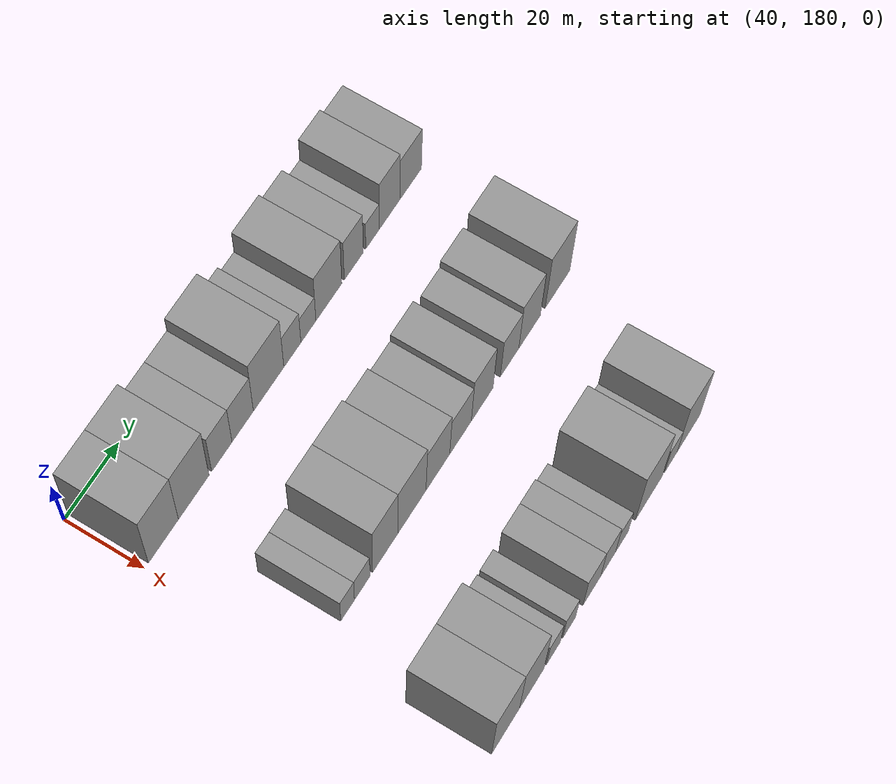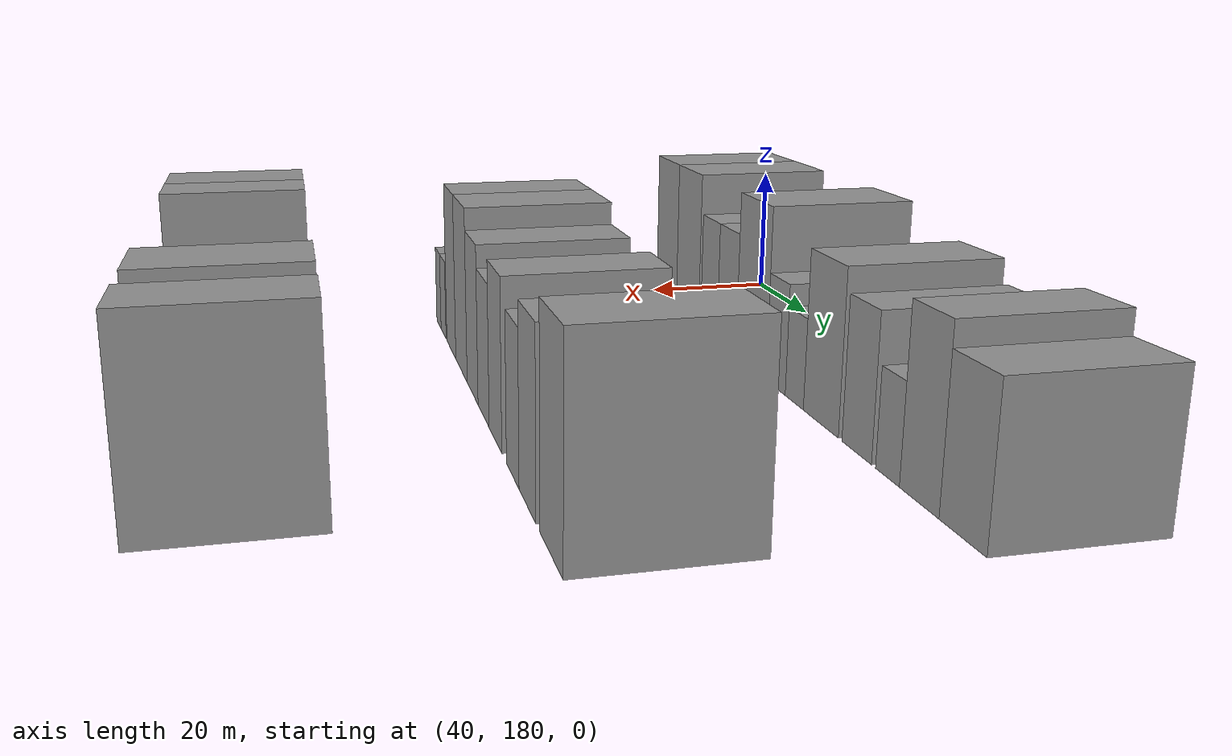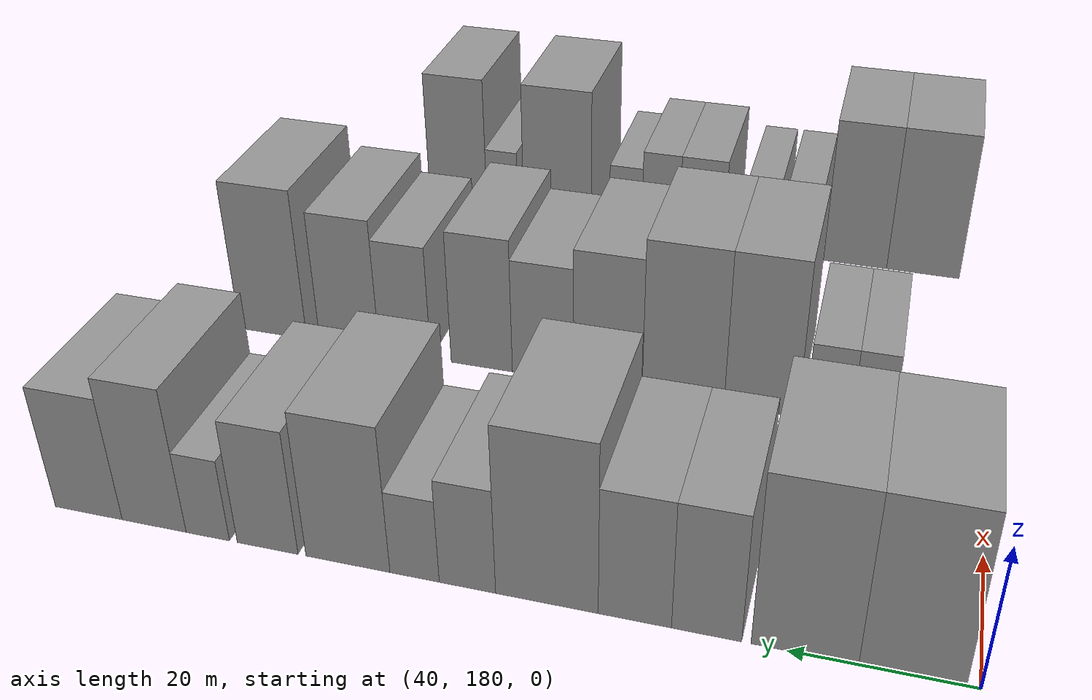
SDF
<sdf version="1.6">
 <world name="default">
  <model name="building_67">
   <static>1</static>
   <pose>50.0000 186.9651 0 0.000000 0.000000 0.000000</pose>
   <link name="link">
    <pose>0 0 12.00 0 0 0</pose>
    <collision name="collision"><geometry><box><size>20.0000 11.0808 24.0000</size></box></geometry></collision>
    <visual name="visual">
     <cast_shadows>0</cast_shadows>
     <geometry><box><size>20.0000 11.0808 24.0000</size></box></geometry>
     <material>
      <script>
       <uri>model://grey_wall/materials/scripts</uri>
       <uri>model://grey_wall/materials/textures</uri>
       <name>vrc/grey_wall</name>
      </script>
     </material>
    </visual>
   </link>
  </model>
  <model name="building_68">
   <static>1</static>
   <pose>50.0000 198.2127 0 0.000000 0.000000 0.000000</pose>
   <link name="link">
    <pose>0 0 12.00 0 0 0</pose>
    <collision name="collision"><geometry><box><size>20.0000 11.4144 24.0000</size></box></geometry></collision>
    <visual name="visual">
     <cast_shadows>0</cast_shadows>
     <geometry><box><size>20.0000 11.4144 24.0000</size></box></geometry>
     <material>
      <script>
       <uri>model://grey_wall/materials/scripts</uri>
       <uri>model://grey_wall/materials/textures</uri>
       <name>vrc/grey_wall</name>
      </script>
     </material>
    </visual>
   </link>
  </model>
  <model name="building_69">
   <static>1</static>
   <pose>50.0000 208.7567 0 0.000000 0.000000 0.000000</pose>
   <link name="link">
    <pose>0 0 9.00 0 0 0</pose>
    <collision name="collision"><geometry><box><size>20.0000 7.6735 18.0000</size></box></geometry></collision>
    <visual name="visual">
     <cast_shadows>0</cast_shadows>
     <geometry><box><size>20.0000 7.6735 18.0000</size></box></geometry>
     <material>
      <script>
       <uri>model://grey_wall/materials/scripts</uri>
       <uri>model://grey_wall/materials/textures</uri>
       <name>vrc/grey_wall</name>
      </script>
     </material>
    </visual>
   </link>
  </model>
  <model name="building_70">
   <static>1</static>
   <pose>50.0000 216.6942 0 0.000000 0.000000 0.000000</pose>
   <link name="link">
    <pose>0 0 9.00 0 0 0</pose>
    <collision name="collision"><geometry><box><size>20.0000 8.2016 18.0000</size></box></geometry></collision>
    <visual name="visual">
     <cast_shadows>0</cast_shadows>
     <geometry><box><size>20.0000 8.2016 18.0000</size></box></geometry>
     <material>
      <script>
       <uri>model://grey_wall/materials/scripts</uri>
       <uri>model://grey_wall/materials/textures</uri>
       <name>vrc/grey_wall</name>
      </script>
     </material>
    </visual>
   </link>
  </model>
  <model name="building_71">
   <static>1</static>
   <pose>50.0000 226.6920 0 0.000000 0.000000 0.000000</pose>
   <link name="link">
    <pose>0 0 12.00 0 0 0</pose>
    <collision name="collision"><geometry><box><size>20.0000 11.7941 24.0000</size></box></geometry></collision>
    <visual name="visual">
     <cast_shadows>0</cast_shadows>
     <geometry><box><size>20.0000 11.7941 24.0000</size></box></geometry>
     <material>
      <script>
       <uri>model://grey_wall/materials/scripts</uri>
       <uri>model://grey_wall/materials/textures</uri>
       <name>vrc/grey_wall</name>
      </script>
     </material>
    </visual>
   </link>
  </model>
  <model name="building_72">
   <static>1</static>
   <pose>50.0000 235.9227 0 0.000000 0.000000 0.000000</pose>
   <link name="link">
    <pose>0 0 7.50 0 0 0</pose>
    <collision name="collision"><geometry><box><size>20.0000 6.6673 15.0000</size></box></geometry></collision>
    <visual name="visual">
     <cast_shadows>0</cast_shadows>
     <geometry><box><size>20.0000 6.6673 15.0000</size></box></geometry>
     <material>
      <script>
       <uri>model://grey_wall/materials/scripts</uri>
       <uri>model://grey_wall/materials/textures</uri>
       <name>vrc/grey_wall</name>
      </script>
     </material>
    </visual>
   </link>
  </model>
  <model name="building_73">
   <static>1</static>
   <pose>50.0000 242.2186 0 0.000000 0.000000 0.000000</pose>
   <link name="link">
    <pose>0 0 6.00 0 0 0</pose>
    <collision name="collision"><geometry><box><size>20.0000 5.9244 12.0000</size></box></geometry></collision>
    <visual name="visual">
     <cast_shadows>0</cast_shadows>
     <geometry><box><size>20.0000 5.9244 12.0000</size></box></geometry>
     <material>
      <script>
       <uri>model://grey_wall/materials/scripts</uri>
       <uri>model://grey_wall/materials/textures</uri>
       <name>vrc/grey_wall</name>
      </script>
     </material>
    </visual>
   </link>
  </model>
  <model name="building_74">
   <static>1</static>
   <pose>50.0000 250.3440 0 0.000000 0.000000 0.000000</pose>
   <link name="link">
    <pose>0 0 10.50 0 0 0</pose>
    <collision name="collision"><geometry><box><size>20.0000 10.3265 21.0000</size></box></geometry></collision>
    <visual name="visual">
     <cast_shadows>0</cast_shadows>
     <geometry><box><size>20.0000 10.3265 21.0000</size></box></geometry>
     <material>
      <script>
       <uri>model://grey_wall/materials/scripts</uri>
       <uri>model://grey_wall/materials/textures</uri>
       <name>vrc/grey_wall</name>
      </script>
     </material>
    </visual>
   </link>
  </model>
  <model name="building_75">
   <static>1</static>
   <pose>50.0000 260.3476 0 0.000000 0.000000 0.000000</pose>
   <link name="link">
    <pose>0 0 9.00 0 0 0</pose>
    <collision name="collision"><geometry><box><size>20.0000 7.6806 18.0000</size></box></geometry></collision>
    <visual name="visual">
     <cast_shadows>0</cast_shadows>
     <geometry><box><size>20.0000 7.6806 18.0000</size></box></geometry>
     <material>
      <script>
       <uri>model://grey_wall/materials/scripts</uri>
       <uri>model://grey_wall/materials/textures</uri>
       <name>vrc/grey_wall</name>
      </script>
     </material>
    </visual>
   </link>
  </model>
  <model name="building_76">
   <static>1</static>
   <pose>50.0000 267.9859 0 0.000000 0.000000 0.000000</pose>
   <link name="link">
    <pose>0 0 6.00 0 0 0</pose>
    <collision name="collision"><geometry><box><size>20.0000 5.5958 12.0000</size></box></geometry></collision>
    <visual name="visual">
     <cast_shadows>0</cast_shadows>
     <geometry><box><size>20.0000 5.5958 12.0000</size></box></geometry>
     <material>
      <script>
       <uri>model://grey_wall/materials/scripts</uri>
       <uri>model://grey_wall/materials/textures</uri>
       <name>vrc/grey_wall</name>
      </script>
     </material>
    </visual>
   </link>
  </model>
  <model name="building_77">
   <static>1</static>
   <pose>50.0000 274.9859 0 0.000000 0.000000 0.000000</pose>
   <link name="link">
    <pose>0 0 10.50 0 0 0</pose>
    <collision name="collision"><geometry><box><size>20.0000 8.4042 21.0000</size></box></geometry></collision>
    <visual name="visual">
     <cast_shadows>0</cast_shadows>
     <geometry><box><size>20.0000 8.4042 21.0000</size></box></geometry>
     <material>
      <script>
       <uri>model://grey_wall/materials/scripts</uri>
       <uri>model://grey_wall/materials/textures</uri>
       <name>vrc/grey_wall</name>
      </script>
     </material>
    </visual>
   </link>
  </model>
  <model name="building_78">
   <static>1</static>
   <pose>50.0000 283.6722 0 0.000000 0.000000 0.000000</pose>
   <link name="link">
    <pose>0 0 9.00 0 0 0</pose>
    <collision name="collision"><geometry><box><size>20.0000 8.9685 18.0000</size></box></geometry></collision>
    <visual name="visual">
     <cast_shadows>0</cast_shadows>
     <geometry><box><size>20.0000 8.9685 18.0000</size></box></geometry>
     <material>
      <script>
       <uri>model://grey_wall/materials/scripts</uri>
       <uri>model://grey_wall/materials/textures</uri>
       <name>vrc/grey_wall</name>
      </script>
     </material>
    </visual>
   </link>
  </model>
  <model name="building_156">
   <static>1</static>
   <pose>90.0000 194.3458 0 0.000000 0.000000 0.000000</pose>
   <link name="link">
    <pose>0 0 6.00 0 0 0</pose>
    <collision name="collision"><geometry><box><size>20.0000 5.2056 12.0000</size></box></geometry></collision>
    <visual name="visual">
     <cast_shadows>0</cast_shadows>
     <geometry><box><size>20.0000 5.2056 12.0000</size></box></geometry>
     <material>
      <script>
       <uri>model://grey_wall/materials/scripts</uri>
       <uri>model://grey_wall/materials/textures</uri>
       <name>vrc/grey_wall</name>
      </script>
     </material>
    </visual>
   </link>
  </model>
  <model name="building_157">
   <static>1</static>
   <pose>90.0000 199.9210 0 0.000000 0.000000 0.000000</pose>
   <link name="link">
    <pose>0 0 6.00 0 0 0</pose>
    <collision name="collision"><geometry><box><size>20.0000 5.9448 12.0000</size></box></geometry></collision>
    <visual name="visual">
     <cast_shadows>0</cast_shadows>
     <geometry><box><size>20.0000 5.9448 12.0000</size></box></geometry>
     <material>
      <script>
       <uri>model://grey_wall/materials/scripts</uri>
       <uri>model://grey_wall/materials/textures</uri>
       <name>vrc/grey_wall</name>
      </script>
     </material>
    </visual>
   </link>
  </model>
  <model name="building_158">
   <static>1</static>
   <pose>90.0000 208.7747 0 0.000000 0.000000 0.000000</pose>
   <link name="link">
    <pose>0 0 12.00 0 0 0</pose>
    <collision name="collision"><geometry><box><size>20.0000 9.7626 24.0000</size></box></geometry></collision>
    <visual name="visual">
     <cast_shadows>0</cast_shadows>
     <geometry><box><size>20.0000 9.7626 24.0000</size></box></geometry>
     <material>
      <script>
       <uri>model://grey_wall/materials/scripts</uri>
       <uri>model://grey_wall/materials/textures</uri>
       <name>vrc/grey_wall</name>
      </script>
     </material>
    </visual>
   </link>
  </model>
  <model name="building_159">
   <static>1</static>
   <pose>90.0000 219.2086 0 0.000000 0.000000 0.000000</pose>
   <link name="link">
    <pose>0 0 12.00 0 0 0</pose>
    <collision name="collision"><geometry><box><size>20.0000 11.1052 24.0000</size></box></geometry></collision>
    <visual name="visual">
     <cast_shadows>0</cast_shadows>
     <geometry><box><size>20.0000 11.1052 24.0000</size></box></geometry>
     <material>
      <script>
       <uri>model://grey_wall/materials/scripts</uri>
       <uri>model://grey_wall/materials/textures</uri>
       <name>vrc/grey_wall</name>
      </script>
     </material>
    </visual>
   </link>
  </model>
  <model name="building_160">
   <static>1</static>
   <pose>90.0000 229.5092 0 0.000000 0.000000 0.000000</pose>
   <link name="link">
    <pose>0 0 10.50 0 0 0</pose>
    <collision name="collision"><geometry><box><size>20.0000 9.4959 21.0000</size></box></geometry></collision>
    <visual name="visual">
     <cast_shadows>0</cast_shadows>
     <geometry><box><size>20.0000 9.4959 21.0000</size></box></geometry>
     <material>
      <script>
       <uri>model://grey_wall/materials/scripts</uri>
       <uri>model://grey_wall/materials/textures</uri>
       <name>vrc/grey_wall</name>
      </script>
     </material>
    </visual>
   </link>
  </model>
  <model name="building_161">
   <static>1</static>
   <pose>90.0000 238.6133 0 0.000000 0.000000 0.000000</pose>
   <link name="link">
    <pose>0 0 9.00 0 0 0</pose>
    <collision name="collision"><geometry><box><size>20.0000 8.7124 18.0000</size></box></geometry></collision>
    <visual name="visual">
     <cast_shadows>0</cast_shadows>
     <geometry><box><size>20.0000 8.7124 18.0000</size></box></geometry>
     <material>
      <script>
       <uri>model://grey_wall/materials/scripts</uri>
       <uri>model://grey_wall/materials/textures</uri>
       <name>vrc/grey_wall</name>
      </script>
     </material>
    </visual>
   </link>
  </model>
  <model name="building_162">
   <static>1</static>
   <pose>90.0000 247.4016 0 0.000000 0.000000 0.000000</pose>
   <link name="link">
    <pose>0 0 10.50 0 0 0</pose>
    <collision name="collision"><geometry><box><size>20.0000 8.8642 21.0000</size></box></geometry></collision>
    <visual name="visual">
     <cast_shadows>0</cast_shadows>
     <geometry><box><size>20.0000 8.8642 21.0000</size></box></geometry>
     <material>
      <script>
       <uri>model://grey_wall/materials/scripts</uri>
       <uri>model://grey_wall/materials/textures</uri>
       <name>vrc/grey_wall</name>
      </script>
     </material>
    </visual>
   </link>
  </model>
  <model name="building_163">
   <static>1</static>
   <pose>90.0000 258.6544 0 0.000000 0.000000 0.000000</pose>
   <link name="link">
    <pose>0 0 9.00 0 0 0</pose>
    <collision name="collision"><geometry><box><size>20.0000 7.6414 18.0000</size></box></geometry></collision>
    <visual name="visual">
     <cast_shadows>0</cast_shadows>
     <geometry><box><size>20.0000 7.6414 18.0000</size></box></geometry>
     <material>
      <script>
       <uri>model://grey_wall/materials/scripts</uri>
       <uri>model://grey_wall/materials/textures</uri>
       <name>vrc/grey_wall</name>
      </script>
     </material>
    </visual>
   </link>
  </model>
  <model name="building_164">
   <static>1</static>
   <pose>90.0000 266.9931 0 0.000000 0.000000 0.000000</pose>
   <link name="link">
    <pose>0 0 10.50 0 0 0</pose>
    <collision name="collision"><geometry><box><size>20.0000 9.0359 21.0000</size></box></geometry></collision>
    <visual name="visual">
     <cast_shadows>0</cast_shadows>
     <geometry><box><size>20.0000 9.0359 21.0000</size></box></geometry>
     <material>
      <script>
       <uri>model://grey_wall/materials/scripts</uri>
       <uri>model://grey_wall/materials/textures</uri>
       <name>vrc/grey_wall</name>
      </script>
     </material>
    </visual>
   </link>
  </model>
  <model name="building_165">
   <static>1</static>
   <pose>90.0000 278.7299 0 0.000000 0.000000 0.000000</pose>
   <link name="link">
    <pose>0 0 12.00 0 0 0</pose>
    <collision name="collision"><geometry><box><size>20.0000 10.4376 24.0000</size></box></geometry></collision>
    <visual name="visual">
     <cast_shadows>0</cast_shadows>
     <geometry><box><size>20.0000 10.4376 24.0000</size></box></geometry>
     <material>
      <script>
       <uri>model://grey_wall/materials/scripts</uri>
       <uri>model://grey_wall/materials/textures</uri>
       <name>vrc/grey_wall</name>
      </script>
     </material>
    </visual>
   </link>
  </model>
  <model name="building_236">
   <static>1</static>
   <pose>130.0000 189.7986 0 0.000000 0.000000 0.000000</pose>
   <link name="link">
    <pose>0 0 12.00 0 0 0</pose>
    <collision name="collision"><geometry><box><size>20.0000 10.8643 24.0000</size></box></geometry></collision>
    <visual name="visual">
     <cast_shadows>0</cast_shadows>
     <geometry><box><size>20.0000 10.8643 24.0000</size></box></geometry>
     <material>
      <script>
       <uri>model://grey_wall/materials/scripts</uri>
       <uri>model://grey_wall/materials/textures</uri>
       <name>vrc/grey_wall</name>
      </script>
     </material>
    </visual>
   </link>
  </model>
  <model name="building_237">
   <static>1</static>
   <pose>130.0000 200.0447 0 0.000000 0.000000 0.000000</pose>
   <link name="link">
    <pose>0 0 12.00 0 0 0</pose>
    <collision name="collision"><geometry><box><size>20.0000 9.6279 24.0000</size></box></geometry></collision>
    <visual name="visual">
     <cast_shadows>0</cast_shadows>
     <geometry><box><size>20.0000 9.6279 24.0000</size></box></geometry>
     <material>
      <script>
       <uri>model://grey_wall/materials/scripts</uri>
       <uri>model://grey_wall/materials/textures</uri>
       <name>vrc/grey_wall</name>
      </script>
     </material>
    </visual>
   </link>
  </model>
  <model name="building_238">
   <static>1</static>
   <pose>130.0000 208.5767 0 0.000000 0.000000 0.000000</pose>
   <link name="link">
    <pose>0 0 6.00 0 0 0</pose>
    <collision name="collision"><geometry><box><size>20.0000 5.4361 12.0000</size></box></geometry></collision>
    <visual name="visual">
     <cast_shadows>0</cast_shadows>
     <geometry><box><size>20.0000 5.4361 12.0000</size></box></geometry>
     <material>
      <script>
       <uri>model://grey_wall/materials/scripts</uri>
       <uri>model://grey_wall/materials/textures</uri>
       <name>vrc/grey_wall</name>
      </script>
     </material>
    </visual>
   </link>
  </model>
  <model name="building_239">
   <static>1</static>
   <pose>130.0000 214.8916 0 0.000000 0.000000 0.000000</pose>
   <link name="link">
    <pose>0 0 6.00 0 0 0</pose>
    <collision name="collision"><geometry><box><size>20.0000 5.1936 12.0000</size></box></geometry></collision>
    <visual name="visual">
     <cast_shadows>0</cast_shadows>
     <geometry><box><size>20.0000 5.1936 12.0000</size></box></geometry>
     <material>
      <script>
       <uri>model://grey_wall/materials/scripts</uri>
       <uri>model://grey_wall/materials/textures</uri>
       <name>vrc/grey_wall</name>
      </script>
     </material>
    </visual>
   </link>
  </model>
  <model name="building_240">
   <static>1</static>
   <pose>130.0000 224.0974 0 0.000000 0.000000 0.000000</pose>
   <link name="link">
    <pose>0 0 7.50 0 0 0</pose>
    <collision name="collision"><geometry><box><size>20.0000 7.2181 15.0000</size></box></geometry></collision>
    <visual name="visual">
     <cast_shadows>0</cast_shadows>
     <geometry><box><size>20.0000 7.2181 15.0000</size></box></geometry>
     <material>
      <script>
       <uri>model://grey_wall/materials/scripts</uri>
       <uri>model://grey_wall/materials/textures</uri>
       <name>vrc/grey_wall</name>
      </script>
     </material>
    </visual>
   </link>
  </model>
  <model name="building_241">
   <static>1</static>
   <pose>130.0000 230.7337 0 0.000000 0.000000 0.000000</pose>
   <link name="link">
    <pose>0 0 7.50 0 0 0</pose>
    <collision name="collision"><geometry><box><size>20.0000 6.0546 15.0000</size></box></geometry></collision>
    <visual name="visual">
     <cast_shadows>0</cast_shadows>
     <geometry><box><size>20.0000 6.0546 15.0000</size></box></geometry>
     <material>
      <script>
       <uri>model://grey_wall/materials/scripts</uri>
       <uri>model://grey_wall/materials/textures</uri>
       <name>vrc/grey_wall</name>
      </script>
     </material>
    </visual>
   </link>
  </model>
  <model name="building_242">
   <static>1</static>
   <pose>130.0000 236.4104 0 0.000000 0.000000 0.000000</pose>
   <link name="link">
    <pose>0 0 6.00 0 0 0</pose>
    <collision name="collision"><geometry><box><size>20.0000 5.2987 12.0000</size></box></geometry></collision>
    <visual name="visual">
     <cast_shadows>0</cast_shadows>
     <geometry><box><size>20.0000 5.2987 12.0000</size></box></geometry>
     <material>
      <script>
       <uri>model://grey_wall/materials/scripts</uri>
       <uri>model://grey_wall/materials/textures</uri>
       <name>vrc/grey_wall</name>
      </script>
     </material>
    </visual>
   </link>
  </model>
  <model name="building_243">
   <static>1</static>
   <pose>130.0000 247.7132 0 0.000000 0.000000 0.000000</pose>
   <link name="link">
    <pose>0 0 12.00 0 0 0</pose>
    <collision name="collision"><geometry><box><size>20.0000 11.3069 24.0000</size></box></geometry></collision>
    <visual name="visual">
     <cast_shadows>0</cast_shadows>
     <geometry><box><size>20.0000 11.3069 24.0000</size></box></geometry>
     <material>
      <script>
       <uri>model://grey_wall/materials/scripts</uri>
       <uri>model://grey_wall/materials/textures</uri>
       <name>vrc/grey_wall</name>
      </script>
     </material>
    </visual>
   </link>
  </model>
  <model name="building_244">
   <static>1</static>
   <pose>130.0000 256.9910 0 0.000000 0.000000 0.000000</pose>
   <link name="link">
    <pose>0 0 6.00 0 0 0</pose>
    <collision name="collision"><geometry><box><size>20.0000 5.2487 12.0000</size></box></geometry></collision>
    <visual name="visual">
     <cast_shadows>0</cast_shadows>
     <geometry><box><size>20.0000 5.2487 12.0000</size></box></geometry>
     <material>
      <script>
       <uri>model://grey_wall/materials/scripts</uri>
       <uri>model://grey_wall/materials/textures</uri>
       <name>vrc/grey_wall</name>
      </script>
     </material>
    </visual>
   </link>
  </model>
  <model name="building_245">
   <static>1</static>
   <pose>130.0000 264.5051 0 0.000000 0.000000 0.000000</pose>
   <link name="link">
    <pose>0 0 12.00 0 0 0</pose>
    <collision name="collision"><geometry><box><size>20.0000 9.7795 24.0000</size></box></geometry></collision>
    <visual name="visual">
     <cast_shadows>0</cast_shadows>
     <geometry><box><size>20.0000 9.7795 24.0000</size></box></geometry>
     <material>
      <script>
       <uri>model://grey_wall/materials/scripts</uri>
       <uri>model://grey_wall/materials/textures</uri>
       <name>vrc/grey_wall</name>
      </script>
     </material>
    </visual>
   </link>
  </model>
 </world>
</sdf>
